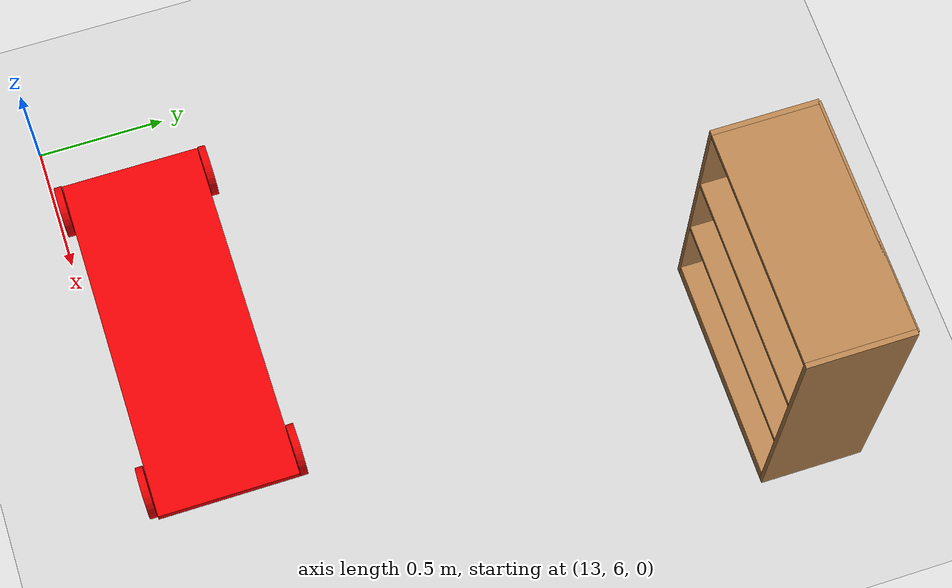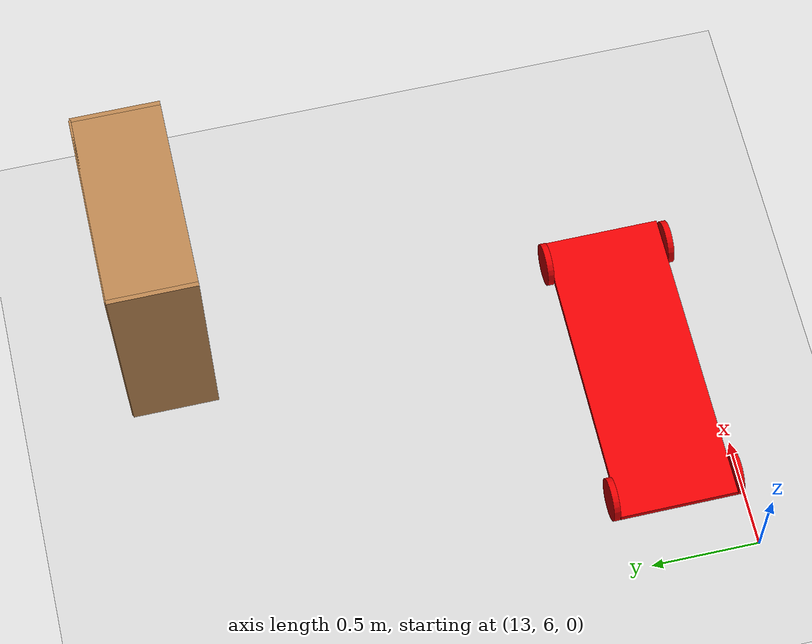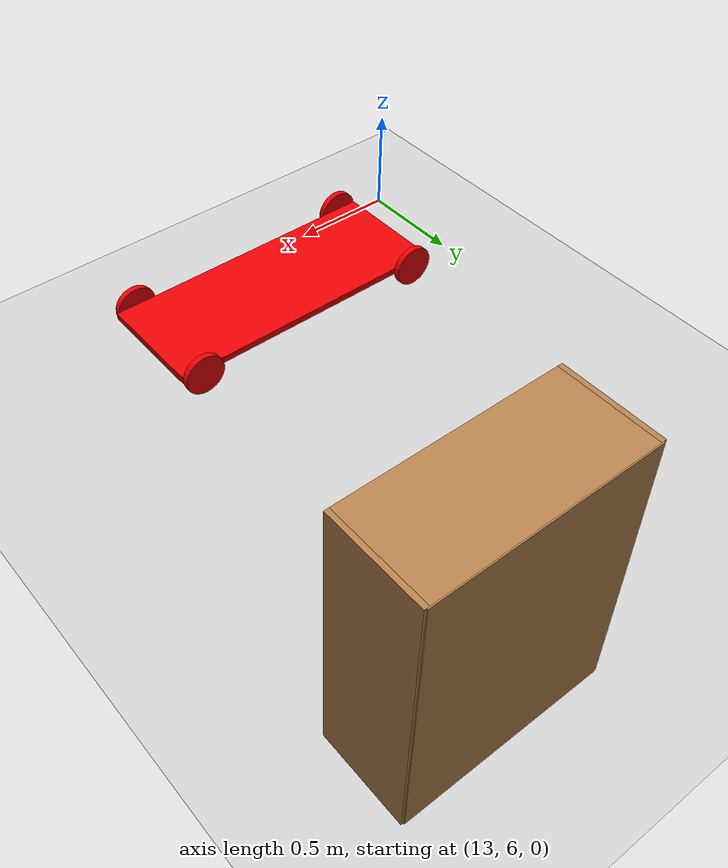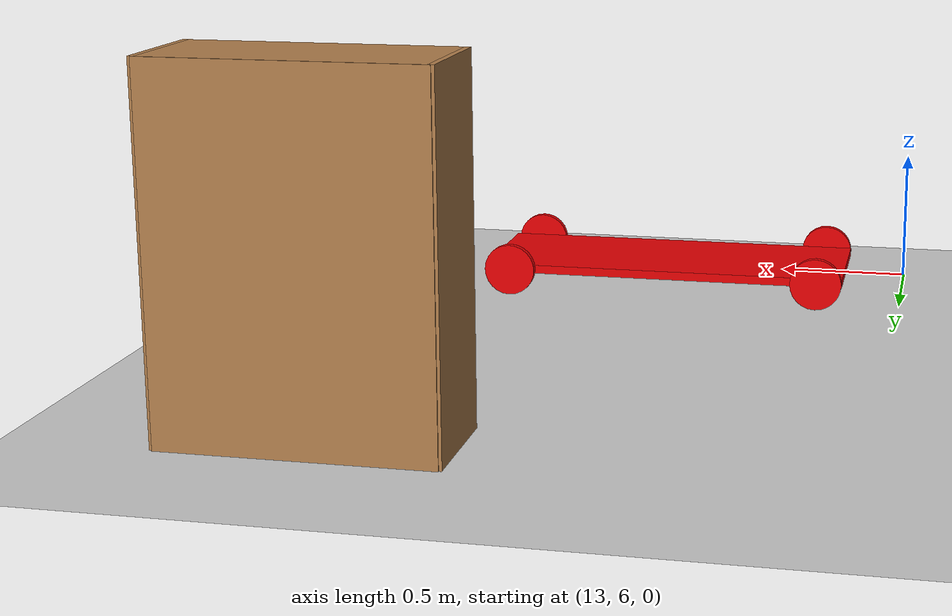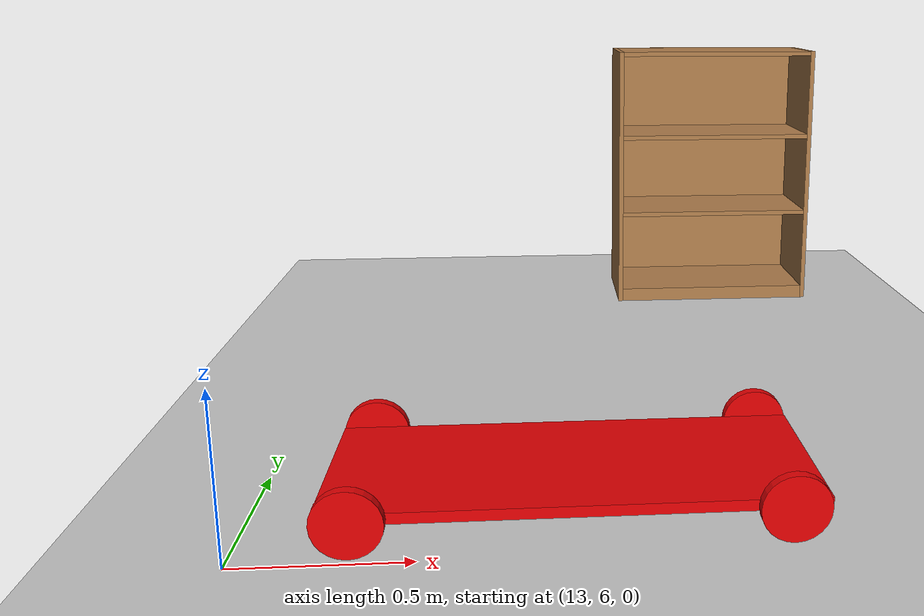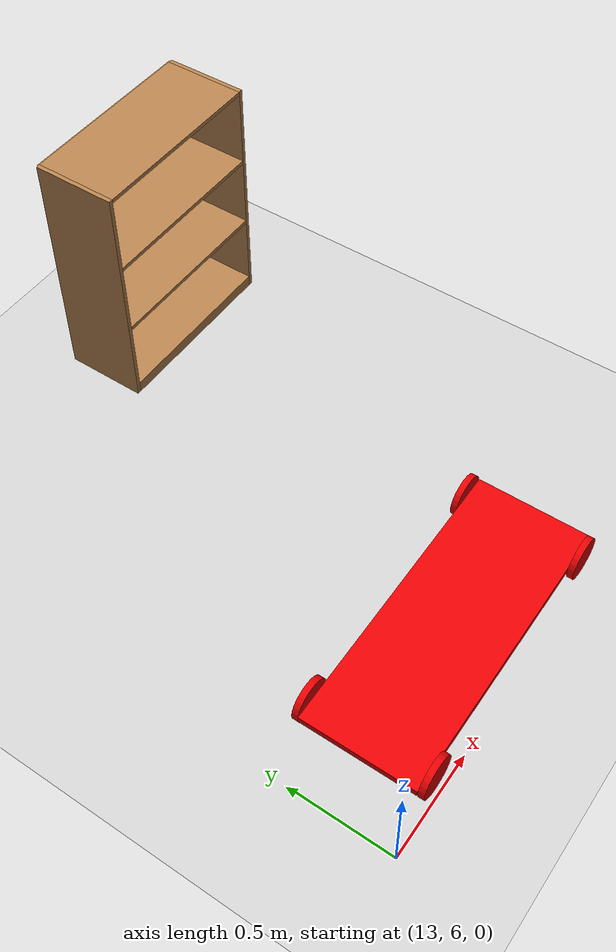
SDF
<sdf version="1.6">
 <world name="default">
  <model name="ground_plane">
   <static>1</static>
   <link name="link">
    <collision name="collision">
     <geometry><plane><normal>0 0 1</normal><size>100 100</size></plane></geometry>
     <surface><friction><ode><mu>100</mu><mu2>50</mu2></ode></friction></surface>
    </collision>
    <visual name="visual">
     <cast_shadows>0</cast_shadows>
     <geometry><plane><normal>0 0 1</normal><size>100 100</size></plane></geometry>
     <material>
      <script><uri>file://media/materials/scripts/gazebo.material</uri><name>Gazebo/Grey</name></script>
     </material>
    </visual>
   </link>
  </model>
  <model name="cart_0">
   <link name="link_0">
    <pose>0.002043 -1e-06 0 0 -0 0</pose>
    <inertial>
     <mass>0.0253075</mass>
     <inertia>
      <ixx>0.00062948</ixx>
      <ixy>0</ixy>
      <ixz>0</ixz>
      <iyy>0.00421325</iyy>
      <iyz>0</iyz>
      <izz>0.00483818</izz>
     </inertia>
    </inertial>
    <visual name="visual">
     <geometry><box><size>1.41306 0.545344 0.032853</size></box></geometry>
     <material>
      <lighting>1</lighting>
      <script><uri>file://media/materials/scripts/gazebo.material</uri><name>Gazebo/Grey</name></script>
      <ambient>0.9 0.002 0 1</ambient>
      <diffuse>0.9 0.002 0.01 0.9</diffuse>
      <specular>0.01 0.01 0.01 1</specular>
      <emissive>0 0 0 1</emissive>
      <shader type="vertex"><normal_map>__default__</normal_map></shader>
     </material>
    </visual>
    <collision name="collision">
     <geometry><box><size>1.41306 0.545344 0.032853</size></box></geometry>
     <surface>
      <friction>
       <ode><mu>1</mu><mu2>1</mu2><fdir1>0 0 0</fdir1><slip1>0</slip1><slip2>0</slip2></ode>
       <torsional>
        <coefficient>1</coefficient>
        <patch_radius>0</patch_radius>
        <surface_radius>0</surface_radius>
        <use_patch_radius>1</use_patch_radius>
        <ode><slip>0</slip></ode>
       </torsional>
      </friction>
      <bounce><restitution_coefficient>0</restitution_coefficient><threshold>1e+06</threshold></bounce>
      <contact>
       <collide_without_contact>0</collide_without_contact>
       <collide_without_contact_bitmask>1</collide_without_contact_bitmask>
       <collide_bitmask>1</collide_bitmask>
       <ode>
        <soft_cfm>0</soft_cfm>
        <soft_erp>0.2</soft_erp>
        <kp>1e+13</kp>
        <kd>1</kd>
        <max_vel>0.01</max_vel>
        <min_depth>0</min_depth>
       </ode>
       <bullet>
        <split_impulse>1</split_impulse>
        <split_impulse_penetration_threshold>-0.01</split_impulse_penetration_threshold>
        <soft_cfm>0</soft_cfm>
        <soft_erp>0.2</soft_erp>
        <kp>1e+13</kp>
        <kd>1</kd>
       </bullet>
      </contact>
     </surface>
    </collision>
   </link>
   <link name="link_1">
    <pose>0.598738 -0.289052 0 -1.55276 0 0</pose>
    <inertial>
     <mass>0.00115815</mass>
     <inertia>
      <ixx>2.95396e-06</ixx>
      <ixy>0</ixy>
      <ixz>0</ixz>
      <iyy>2.95396e-06</iyy>
      <iyz>0</iyz>
      <izz>5.7496e-06</izz>
     </inertia>
    </inertial>
    <visual name="visual">
     <geometry><cylinder><radius>0.0996172</radius><length>0.0291706</length></cylinder></geometry>
     <material>
      <lighting>1</lighting>
      <script><uri>file://media/materials/scripts/gazebo.material</uri><name>Gazebo/Grey</name></script>
      <ambient>0.9 0.002 0 1</ambient>
      <diffuse>0.9 0.002 0.01 0.9</diffuse>
      <specular>0.01 0.01 0.01 1</specular>
      <emissive>0 0 0 1</emissive>
      <shader type="vertex"><normal_map>__default__</normal_map></shader>
     </material>
    </visual>
    <collision name="collision">
     <geometry><cylinder><radius>0.099617</radius><length>0.029171</length></cylinder></geometry>
     <surface>
      <friction>
       <ode><mu>1</mu><mu2>1</mu2><fdir1>0 0 0</fdir1><slip1>0</slip1><slip2>0</slip2></ode>
       <torsional>
        <coefficient>1</coefficient>
        <patch_radius>0</patch_radius>
        <surface_radius>0</surface_radius>
        <use_patch_radius>1</use_patch_radius>
        <ode><slip>0</slip></ode>
       </torsional>
      </friction>
      <bounce><restitution_coefficient>0</restitution_coefficient><threshold>1e+06</threshold></bounce>
      <contact>
       <collide_without_contact>0</collide_without_contact>
       <collide_without_contact_bitmask>1</collide_without_contact_bitmask>
       <collide_bitmask>1</collide_bitmask>
       <ode>
        <soft_cfm>0</soft_cfm>
        <soft_erp>0.2</soft_erp>
        <kp>1e+13</kp>
        <kd>1</kd>
        <max_vel>0.01</max_vel>
        <min_depth>0</min_depth>
       </ode>
       <bullet>
        <split_impulse>1</split_impulse>
        <split_impulse_penetration_threshold>-0.01</split_impulse_penetration_threshold>
        <soft_cfm>0</soft_cfm>
        <soft_erp>0.2</soft_erp>
        <kp>1e+13</kp>
        <kd>1</kd>
       </bullet>
      </contact>
     </surface>
    </collision>
   </link>
   <link name="link_1_clone">
    <pose>-0.604867 0.289051 0 -1.55276 0 0</pose>
    <inertial>
     <mass>0.00115815</mass>
     <inertia>
      <ixx>2.95396e-06</ixx>
      <ixy>0</ixy>
      <ixz>0</ixz>
      <iyy>2.95396e-06</iyy>
      <iyz>0</iyz>
      <izz>5.7496e-06</izz>
     </inertia>
    </inertial>
    <visual name="visual">
     <geometry><cylinder><radius>0.0996172</radius><length>0.0291706</length></cylinder></geometry>
     <material>
      <lighting>1</lighting>
      <script><uri>file://media/materials/scripts/gazebo.material</uri><name>Gazebo/Grey</name></script>
      <ambient>0.9 0.002 0 1</ambient>
      <diffuse>0.9 0.002 0.01 0.9</diffuse>
      <specular>0.01 0.01 0.01 1</specular>
      <emissive>0 0 0 1</emissive>
      <shader type="vertex"><normal_map>__default__</normal_map></shader>
     </material>
    </visual>
    <collision name="collision">
     <geometry><cylinder><radius>0.099617</radius><length>0.029171</length></cylinder></geometry>
     <surface>
      <friction>
       <ode><mu>1</mu><mu2>1</mu2><fdir1>0 0 0</fdir1><slip1>0</slip1><slip2>0</slip2></ode>
       <torsional>
        <coefficient>1</coefficient>
        <patch_radius>0</patch_radius>
        <surface_radius>0</surface_radius>
        <use_patch_radius>1</use_patch_radius>
        <ode><slip>0</slip></ode>
       </torsional>
      </friction>
      <bounce><restitution_coefficient>0</restitution_coefficient><threshold>1e+06</threshold></bounce>
      <contact>
       <collide_without_contact>0</collide_without_contact>
       <collide_without_contact_bitmask>1</collide_without_contact_bitmask>
       <collide_bitmask>1</collide_bitmask>
       <ode>
        <soft_cfm>0</soft_cfm>
        <soft_erp>0.2</soft_erp>
        <kp>1e+13</kp>
        <kd>1</kd>
        <max_vel>0.01</max_vel>
        <min_depth>0</min_depth>
       </ode>
       <bullet>
        <split_impulse>1</split_impulse>
        <split_impulse_penetration_threshold>-0.01</split_impulse_penetration_threshold>
        <soft_cfm>0</soft_cfm>
        <soft_erp>0.2</soft_erp>
        <kp>1e+13</kp>
        <kd>1</kd>
       </bullet>
      </contact>
     </surface>
    </collision>
   </link>
   <link name="link_1_clone_0">
    <pose>-0.604867 -0.289052 0 -1.55276 0 0</pose>
    <inertial>
     <mass>0.00115815</mass>
     <inertia>
      <ixx>2.95396e-06</ixx>
      <ixy>0</ixy>
      <ixz>0</ixz>
      <iyy>2.95396e-06</iyy>
      <iyz>0</iyz>
      <izz>5.7496e-06</izz>
     </inertia>
    </inertial>
    <visual name="visual">
     <geometry><cylinder><radius>0.0996172</radius><length>0.0291706</length></cylinder></geometry>
     <material>
      <lighting>1</lighting>
      <script><uri>file://media/materials/scripts/gazebo.material</uri><name>Gazebo/Grey</name></script>
      <ambient>0.9 0.002 0 1</ambient>
      <diffuse>0.9 0.002 0.01 0.9</diffuse>
      <specular>0.01 0.01 0.01 1</specular>
      <emissive>0 0 0 1</emissive>
      <shader type="vertex"><normal_map>__default__</normal_map></shader>
     </material>
    </visual>
    <collision name="collision">
     <geometry><cylinder><radius>0.099617</radius><length>0.029171</length></cylinder></geometry>
     <surface>
      <friction>
       <ode><mu>1</mu><mu2>1</mu2><fdir1>0 0 0</fdir1><slip1>0</slip1><slip2>0</slip2></ode>
       <torsional>
        <coefficient>1</coefficient>
        <patch_radius>0</patch_radius>
        <surface_radius>0</surface_radius>
        <use_patch_radius>1</use_patch_radius>
        <ode><slip>0</slip></ode>
       </torsional>
      </friction>
      <bounce><restitution_coefficient>0</restitution_coefficient><threshold>1e+06</threshold></bounce>
      <contact>
       <collide_without_contact>0</collide_without_contact>
       <collide_without_contact_bitmask>1</collide_without_contact_bitmask>
       <collide_bitmask>1</collide_bitmask>
       <ode>
        <soft_cfm>0</soft_cfm>
        <soft_erp>0.2</soft_erp>
        <kp>1e+13</kp>
        <kd>1</kd>
        <max_vel>0.01</max_vel>
        <min_depth>0</min_depth>
       </ode>
       <bullet>
        <split_impulse>1</split_impulse>
        <split_impulse_penetration_threshold>-0.01</split_impulse_penetration_threshold>
        <soft_cfm>0</soft_cfm>
        <soft_erp>0.2</soft_erp>
        <kp>1e+13</kp>
        <kd>1</kd>
       </bullet>
      </contact>
     </surface>
    </collision>
   </link>
   <link name="link_1_clone_1">
    <pose>0.608953 0.289051 0 -1.55276 0 0</pose>
    <inertial>
     <mass>0.00115815</mass>
     <inertia>
      <ixx>2.95396e-06</ixx>
      <ixy>0</ixy>
      <ixz>0</ixz>
      <iyy>2.95396e-06</iyy>
      <iyz>0</iyz>
      <izz>5.7496e-06</izz>
     </inertia>
    </inertial>
    <visual name="visual">
     <geometry><cylinder><radius>0.0996172</radius><length>0.0291706</length></cylinder></geometry>
     <material>
      <lighting>1</lighting>
      <script><uri>file://media/materials/scripts/gazebo.material</uri><name>Gazebo/Grey</name></script>
      <ambient>0.9 0.002 0 1</ambient>
      <diffuse>0.9 0.002 0.01 0.9</diffuse>
      <specular>0.01 0.01 0.01 1</specular>
      <emissive>0 0 0 1</emissive>
      <shader type="vertex"><normal_map>__default__</normal_map></shader>
     </material>
    </visual>
    <collision name="collision">
     <geometry><cylinder><radius>0.099617</radius><length>0.029171</length></cylinder></geometry>
     <surface>
      <friction>
       <ode><mu>1</mu><mu2>1</mu2><fdir1>0 0 0</fdir1><slip1>0</slip1><slip2>0</slip2></ode>
       <torsional>
        <coefficient>1</coefficient>
        <patch_radius>0</patch_radius>
        <surface_radius>0</surface_radius>
        <use_patch_radius>1</use_patch_radius>
        <ode><slip>0</slip></ode>
       </torsional>
      </friction>
      <bounce><restitution_coefficient>0</restitution_coefficient><threshold>1e+06</threshold></bounce>
      <contact>
       <collide_without_contact>0</collide_without_contact>
       <collide_without_contact_bitmask>1</collide_without_contact_bitmask>
       <collide_bitmask>1</collide_bitmask>
       <ode>
        <soft_cfm>0</soft_cfm>
        <soft_erp>0.2</soft_erp>
        <kp>1e+13</kp>
        <kd>1</kd>
        <max_vel>0.01</max_vel>
        <min_depth>0</min_depth>
       </ode>
       <bullet>
        <split_impulse>1</split_impulse>
        <split_impulse_penetration_threshold>-0.01</split_impulse_penetration_threshold>
        <soft_cfm>0</soft_cfm>
        <soft_erp>0.2</soft_erp>
        <kp>1e+13</kp>
        <kd>1</kd>
       </bullet>
      </contact>
     </surface>
    </collision>
   </link>
   <joint name="link_0_JOINT_0" type="revolute">
    <parent>link_0</parent>
    <child>link_1</child>
    <axis>
     <xyz>0 0 1</xyz>
     <use_parent_model_frame>0</use_parent_model_frame>
     <limit>
      <lower>-1.79769e+308</lower>
      <upper>1.79769e+308</upper>
      <effort>-1</effort>
      <velocity>-1</velocity>
     </limit>
     <dynamics>
      <spring_reference>0</spring_reference>
      <spring_stiffness>0</spring_stiffness>
      <damping>0</damping>
     </dynamics>
    </axis>
    <physics>
     <ode><limit><cfm>0</cfm><erp>0.2</erp></limit><suspension><cfm>0</cfm><erp>0.2</erp></suspension></ode>
    </physics>
   </joint>
   <joint name="link_0_JOINT_1" type="revolute">
    <parent>link_0</parent>
    <child>link_1_clone_1</child>
    <axis>
     <xyz>0 0 1</xyz>
     <use_parent_model_frame>0</use_parent_model_frame>
     <limit>
      <lower>-1.79769e+308</lower>
      <upper>1.79769e+308</upper>
      <effort>-1</effort>
      <velocity>-1</velocity>
     </limit>
     <dynamics>
      <spring_reference>0</spring_reference>
      <spring_stiffness>0</spring_stiffness>
      <damping>0</damping>
     </dynamics>
    </axis>
    <physics>
     <ode><limit><cfm>0</cfm><erp>0.2</erp></limit><suspension><cfm>0</cfm><erp>0.2</erp></suspension></ode>
    </physics>
   </joint>
   <joint name="link_0_JOINT_2" type="revolute">
    <parent>link_0</parent>
    <child>link_1_clone_0</child>
    <axis>
     <xyz>0 0 1</xyz>
     <use_parent_model_frame>0</use_parent_model_frame>
     <limit>
      <lower>-1.79769e+308</lower>
      <upper>1.79769e+308</upper>
      <effort>-1</effort>
      <velocity>-1</velocity>
     </limit>
     <dynamics>
      <spring_reference>0</spring_reference>
      <spring_stiffness>0</spring_stiffness>
      <damping>0</damping>
     </dynamics>
    </axis>
    <physics>
     <ode><limit><cfm>0</cfm><erp>0.2</erp></limit><suspension><cfm>0</cfm><erp>0.2</erp></suspension></ode>
    </physics>
   </joint>
   <joint name="link_0_JOINT_3" type="revolute">
    <parent>link_0</parent>
    <child>link_1_clone</child>
    <axis>
     <xyz>0 0 1</xyz>
     <use_parent_model_frame>0</use_parent_model_frame>
     <limit>
      <lower>-1.79769e+308</lower>
      <upper>1.79769e+308</upper>
      <effort>-1</effort>
      <velocity>-1</velocity>
     </limit>
     <dynamics>
      <spring_reference>0</spring_reference>
      <spring_stiffness>0</spring_stiffness>
      <damping>0</damping>
     </dynamics>
    </axis>
    <physics>
     <ode><limit><cfm>0</cfm><erp>0.2</erp></limit><suspension><cfm>0</cfm><erp>0.2</erp></suspension></ode>
    </physics>
   </joint>
   <static>0</static>
   <pose>13.9219 6.32362 0.099859 0 8e-06 0.001737</pose>
  </model>
  <model name="bookshelf">
   <static>1</static>
   <link name="link">
    <inertial><mass>1</mass></inertial>
    <collision name="back">
     <pose>0 0.005 0.6 0 -0 0</pose>
     <geometry><box><size>0.9 0.01 1.2</size></box></geometry>
    </collision>
    <visual name="visual1">
     <pose>0 0.005 0.6 0 -0 0</pose>
     <geometry><box><size>0.9 0.01 1.2</size></box></geometry>
     <material>
      <script><uri>file://media/materials/scripts/gazebo.material</uri><name>Gazebo/Wood</name></script>
     </material>
    </visual>
    <collision name="left_side">
     <pose>0.45 -0.195 0.6 0 -0 0</pose>
     <geometry><box><size>0.02 0.4 1.2</size></box></geometry>
    </collision>
    <visual name="visual2">
     <pose>0.45 -0.195 0.6 0 -0 0</pose>
     <geometry><box><size>0.02 0.4 1.2</size></box></geometry>
     <material>
      <script><uri>file://media/materials/scripts/gazebo.material</uri><name>Gazebo/Wood</name></script>
     </material>
    </visual>
    <collision name="right_side">
     <pose>-0.45 -0.195 0.6 0 -0 0</pose>
     <geometry><box><size>0.02 0.4 1.2</size></box></geometry>
    </collision>
    <visual name="visual3">
     <pose>-0.45 -0.195 0.6 0 -0 0</pose>
     <geometry><box><size>0.02 0.4 1.2</size></box></geometry>
     <material>
      <script><uri>file://media/materials/scripts/gazebo.material</uri><name>Gazebo/Wood</name></script>
     </material>
    </visual>
    <collision name="bottom">
     <pose>0 -0.195 0.03 0 -0 0</pose>
     <geometry><box><size>0.88 0.4 0.06</size></box></geometry>
    </collision>
    <visual name="visual4">
     <pose>0 -0.195 0.03 0 -0 0</pose>
     <geometry><box><size>0.88 0.4 0.06</size></box></geometry>
     <material>
      <script><uri>file://media/materials/scripts/gazebo.material</uri><name>Gazebo/Wood</name></script>
     </material>
    </visual>
    <collision name="top">
     <pose>0 -0.195 1.19 0 -0 0</pose>
     <geometry><box><size>0.88 0.4 0.02</size></box></geometry>
    </collision>
    <visual name="visual5">
     <pose>0 -0.195 1.19 0 -0 0</pose>
     <geometry><box><size>0.88 0.4 0.02</size></box></geometry>
     <material>
      <script><uri>file://media/materials/scripts/gazebo.material</uri><name>Gazebo/Wood</name></script>
     </material>
    </visual>
    <collision name="low_shelf">
     <pose>0 -0.195 0.43 0 -0 0</pose>
     <geometry><box><size>0.88 0.4 0.02</size></box></geometry>
    </collision>
    <visual name="visual6">
     <pose>0 -0.195 0.43 0 -0 0</pose>
     <geometry><box><size>0.88 0.4 0.02</size></box></geometry>
     <material>
      <script><uri>file://media/materials/scripts/gazebo.material</uri><name>Gazebo/Wood</name></script>
     </material>
    </visual>
    <collision name="high_shelf">
     <pose>0 -0.195 0.8 0 -0 0</pose>
     <geometry><box><size>0.88 0.4 0.02</size></box></geometry>
    </collision>
    <visual name="visual7">
     <pose>0 -0.195 0.8 0 -0 0</pose>
     <geometry><box><size>0.88 0.4 0.02</size></box></geometry>
     <material>
      <script><uri>file://media/materials/scripts/gazebo.material</uri><name>Gazebo/Wood</name></script>
     </material>
    </visual>
   </link>
   <pose>14.697 8.63776 0 0 -0 0</pose>
  </model>
 </world>
</sdf>
